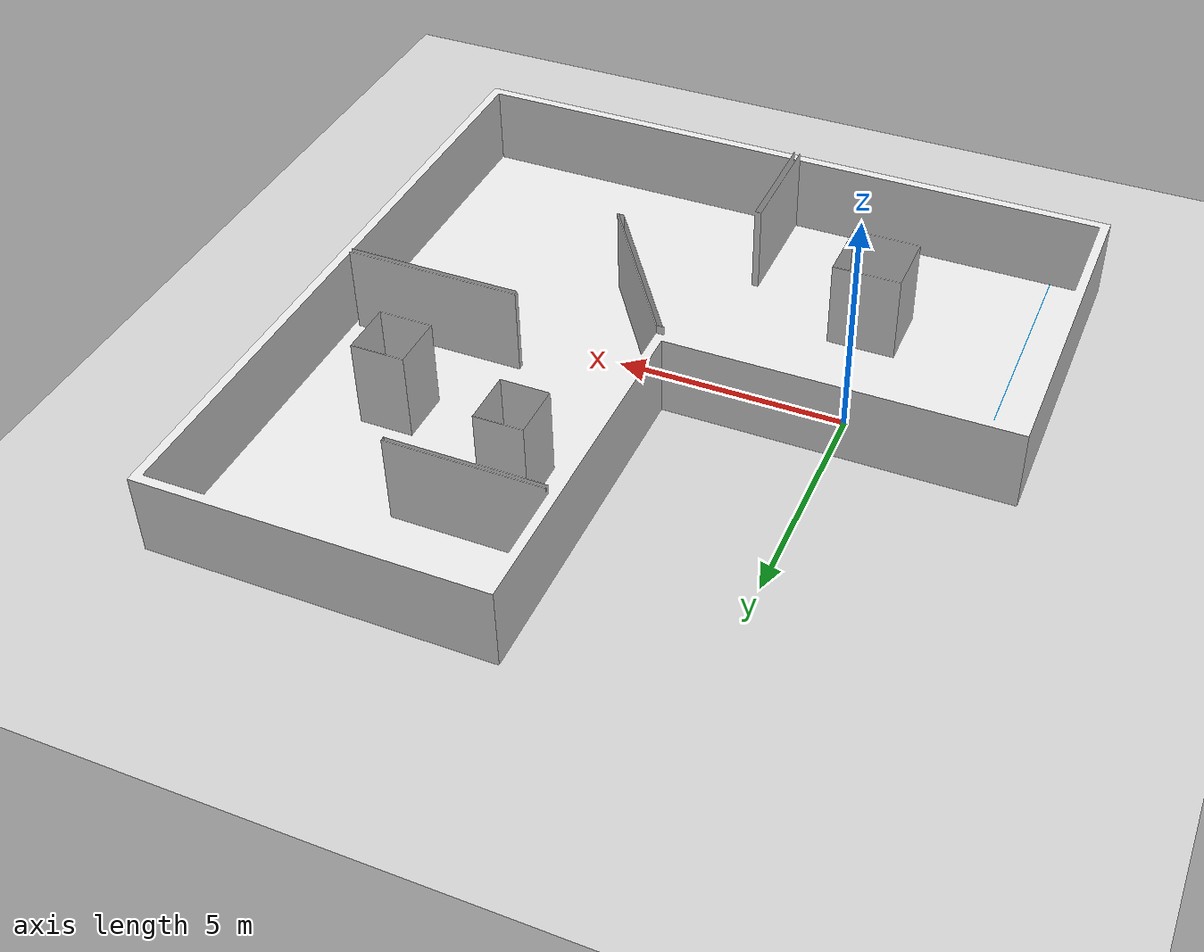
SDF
<?xml version="1.0" ?>
<sdf version="1.6">
  <world name="competition_world">
    <gravity>0 0 -9.8</gravity>

    <plugin filename="gz-sim-physics-system" name="gz::sim::systems::Physics" />
    <plugin filename="gz-sim-user-commands-system" name="gz::sim::systems::UserCommands" />
    <plugin filename="gz-sim-scene-broadcaster-system" name="gz::sim::systems::SceneBroadcaster" />
    <plugin filename="gz-sim-contact-system" name="gz::sim::systems::Contact" />

    <light name="sun" type="directional">
      <cast_shadows>true</cast_shadows>
      <pose>0 0 10 0 0 0</pose>
      <diffuse>0.8 0.8 0.8 1</diffuse>
      <specular>0.2 0.2 0.2 1</specular>
      <attenuation>
        <range>1000</range>
        <constant>0.9</constant>
        <linear>0.01</linear>
        <quadratic>0.001</quadratic>
      </attenuation>
      <direction>-0.5 0.1 -0.9</direction>
    </light>

    <model name="ground_plane">
      <static>true</static>
      <link name="link">
        <collision name="collision">
          <geometry>
            <plane>
              <normal>0 0 1</normal>
              <size>30 30</size>
            </plane>
          </geometry>
        </collision>
        <visual name="visual">
          <geometry>
            <plane>
              <normal>0 0 1</normal>
              <size>30 30</size>
            </plane>
          </geometry>
          <material>
            <ambient>0.8 0.8 0.8 1</ambient>
            <diffuse>0.8 0.8 0.8 1</diffuse>
          </material>
        </visual>
      </link>
    </model>

    <plugin filename="gz-sim-sensors-system" name="gz::sim::systems::Sensors">
      <render_engine>ogre2</render_engine>
    </plugin>

    <include>
      <uri>model://competition_map_dae</uri>
      <pose>0 0 0 0 0 0</pose>
    </include>
  </world>
</sdf>

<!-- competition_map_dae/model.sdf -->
<sdf version="1.6">
  <model name="competition_map_dae">
    <static>true</static>
    <link name="map_link">
      <!-- The SW model contains a 0.20 m floor slab. Sink it so the slab's
           top surface is z=0 and sensors are above, rather than inside, it. -->
      <pose>0 0 -0.2 0 0 0</pose>
      <visual name="map_visual">
        <geometry>
          <mesh>
            <!-- Rules-correct visual: the 0.8 m finish pad touches the marker wall. -->
            <uri>model://competition_map_dae/meshes/competition_map_color_rules.dae</uri>
            <scale>1 1 1</scale>
          </mesh>
        </geometry>
      </visual>
      <collision name="map_collision">
        <geometry>
          <mesh>
            <uri>model://competition_map_dae/meshes/competition_map_collision.obj</uri>
            <scale>1 1 1</scale>
          </mesh>
        </geometry>
      </collision>
    </link>
  </model>
</sdf>
